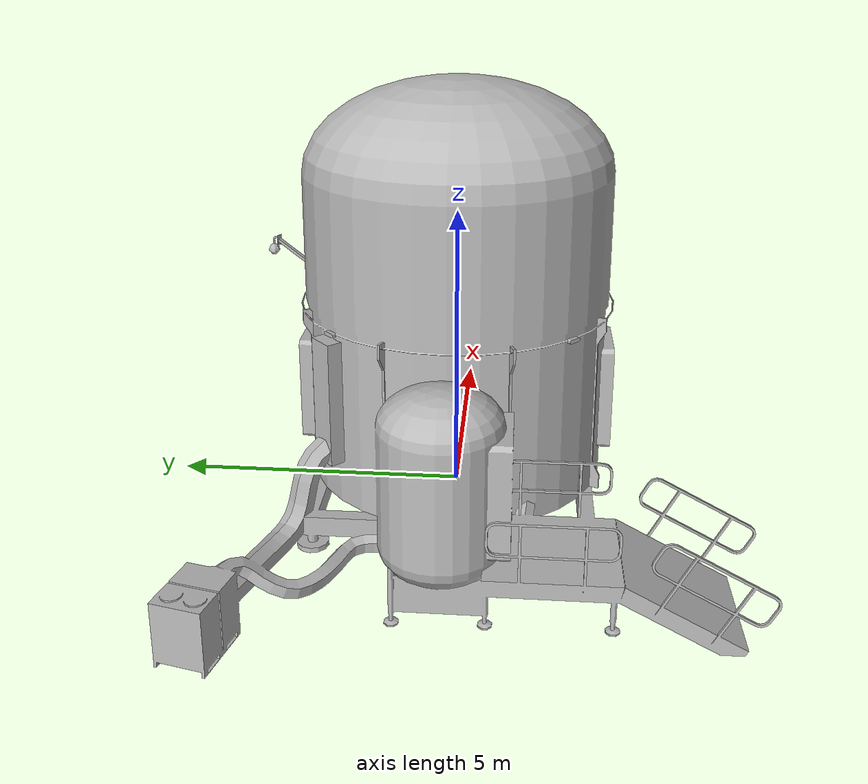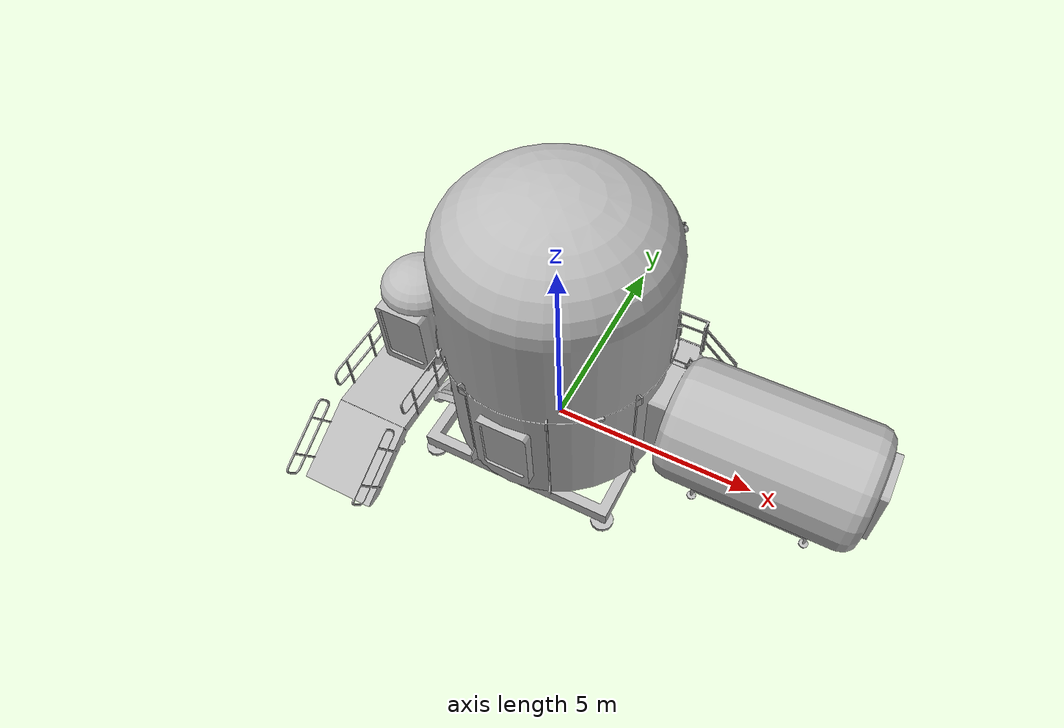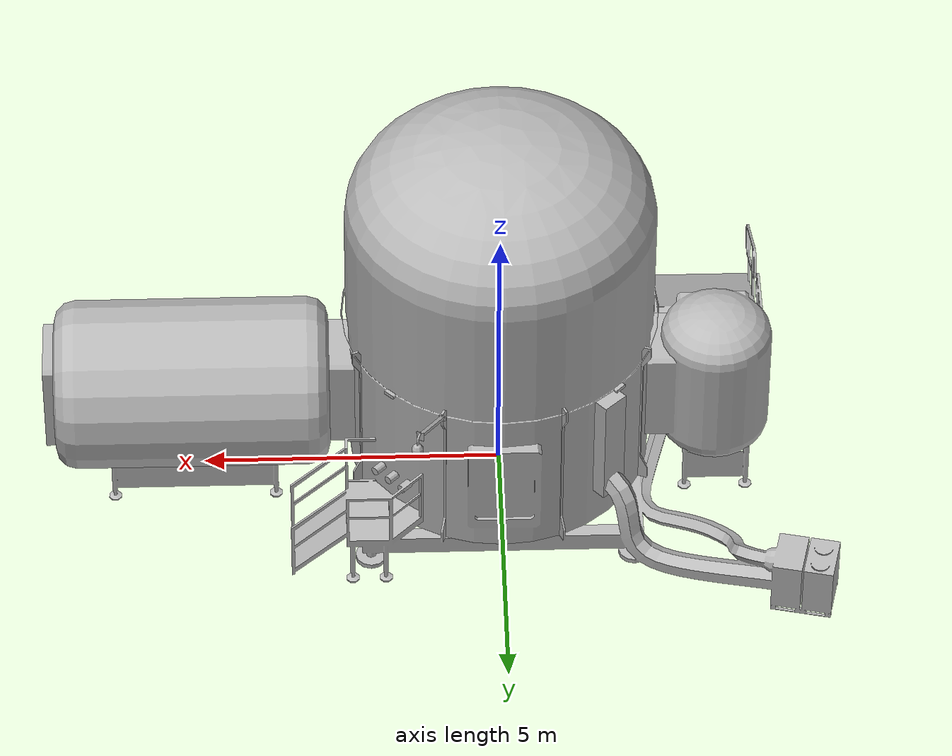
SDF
<?xml version="1.0" encoding="UTF-8"?>
<sdf version='1.9'>
  <model name='HDU'>
    <pose>0 0 0 0 0 0</pose>
    <self_collide>false</self_collide>
    <static>true</static>
    <link name="HDU/base_link">
      <inertial>
        <pose>0.00358 -0.03 .014 0 0 0</pose>
        <mass>2.0</mass>
        <inertia>
          <ixx>0.0000460804</ixx>
          <ixy>0</ixy>
          <ixz>0</ixz>
          <iyy>0.0000055421</iyy>
          <iyz>0</iyz>
          <izz>0.0000436519</izz>
        </inertia>
      </inertial>
      <visual name="HDU1/visual">
        <pose>0 0 -0.1 1.57 0 0</pose>
        <geometry>
          <mesh>
            <scale>0.01 0.01 0.01</scale>
            <uri>model://HDU/meshes/HDU1.obj</uri>
          </mesh>
        </geometry>
      </visual>
      <visual name="HDU2/visual">
        <pose>0 0 -0.1 1.57 0 0</pose>
        <geometry>
          <mesh>
            <scale>0.01 0.01 0.01</scale>
            <uri>model://HDU/meshes/HDU2.obj</uri>
          </mesh>
        </geometry>
      </visual>
      <collision name="HDU1/collision">
        <pose>0.00358 -0.03 .014 0 0 0</pose>
        <geometry>
          <box>
            <size>0.0175 0.091 0.028</size>
          </box>
        </geometry>
      </collision>
    </link>
  </model>
</sdf>
